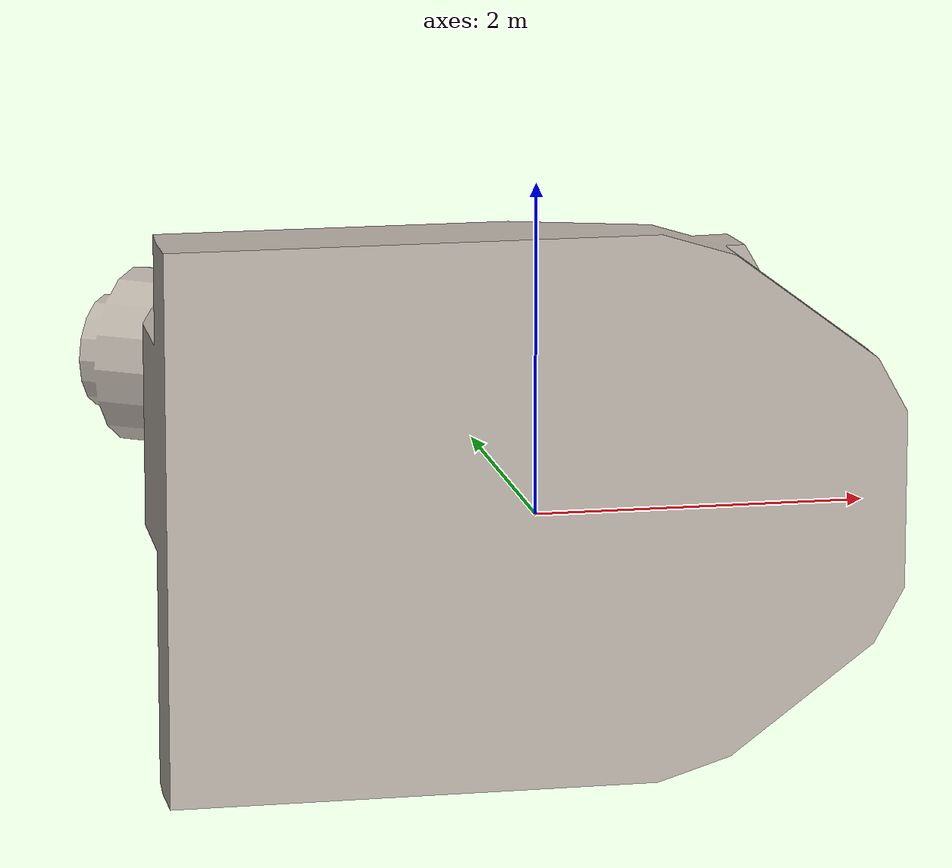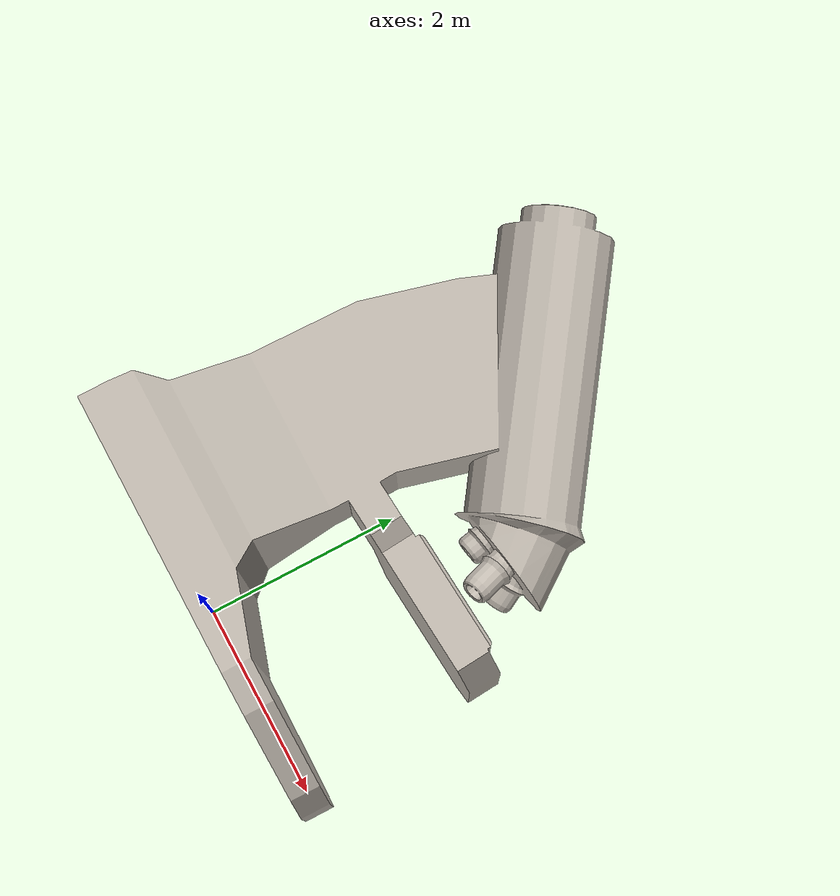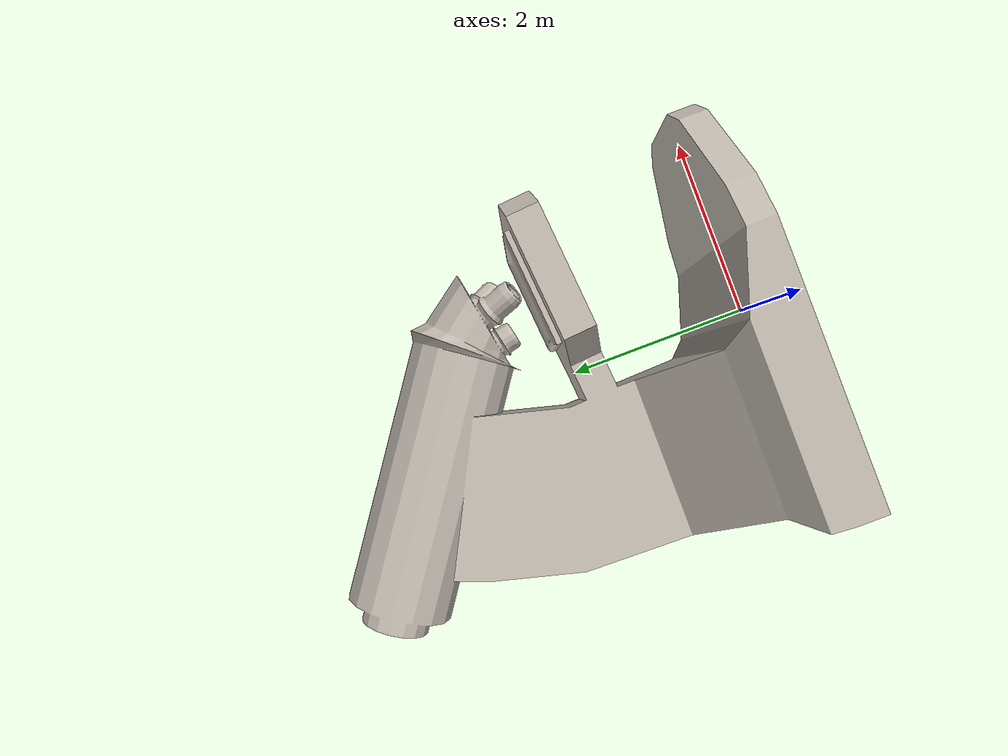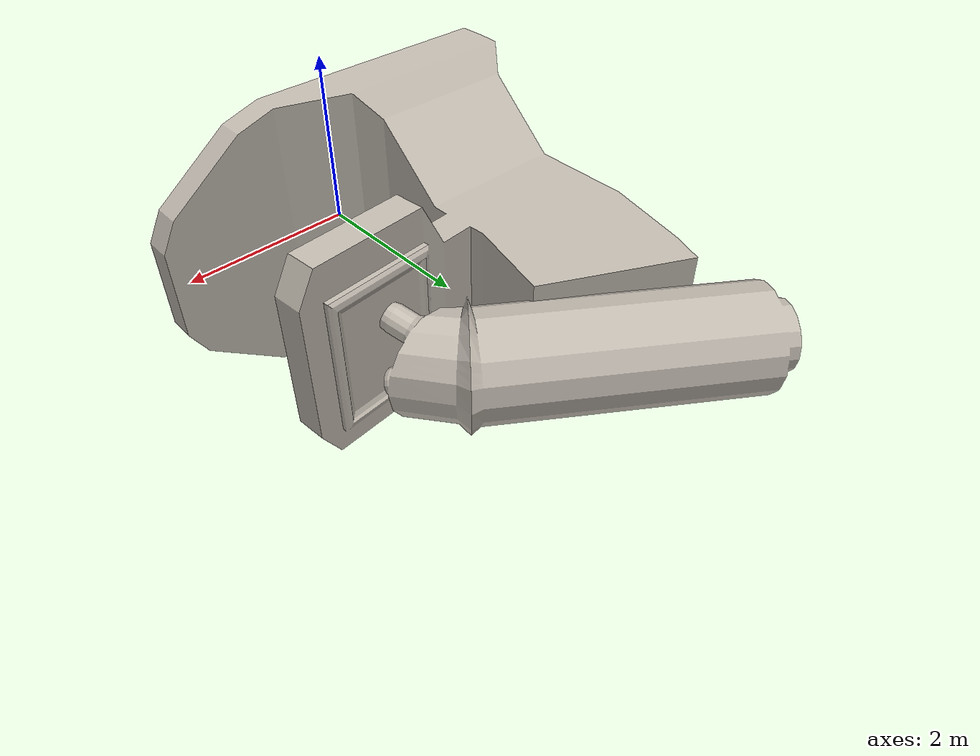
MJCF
<mujoco model="5a32697c3c7b4ee7ac0b6c400c4d7544">
  <default>
    <default class="visual">
      <geom group="2" type="mesh" contype="0" conaffinity="0"/>
    </default>
    <default class="collision">
      <geom group="3" type="mesh"/>
    </default>
  </default>
  <asset>
    <texture type="2d" name="material_0" file="material_0.png"/>
    <material name="material_0" texture="material_0" specular="0.4000000000000001" shininess="0.001"/>
    <mesh file="5a32697c3c7b4ee7ac0b6c400c4d7544/5a32697c3c7b4ee7ac0b6c400c4d7544.obj"/>
    <mesh file="5a32697c3c7b4ee7ac0b6c400c4d7544/5a32697c3c7b4ee7ac0b6c400c4d7544_collision_0.obj"/>
    <mesh file="5a32697c3c7b4ee7ac0b6c400c4d7544/5a32697c3c7b4ee7ac0b6c400c4d7544_collision_1.obj"/>
    <mesh file="5a32697c3c7b4ee7ac0b6c400c4d7544/5a32697c3c7b4ee7ac0b6c400c4d7544_collision_2.obj"/>
    <mesh file="5a32697c3c7b4ee7ac0b6c400c4d7544/5a32697c3c7b4ee7ac0b6c400c4d7544_collision_3.obj"/>
    <mesh file="5a32697c3c7b4ee7ac0b6c400c4d7544/5a32697c3c7b4ee7ac0b6c400c4d7544_collision_4.obj"/>
    <mesh file="5a32697c3c7b4ee7ac0b6c400c4d7544/5a32697c3c7b4ee7ac0b6c400c4d7544_collision_5.obj"/>
    <mesh file="5a32697c3c7b4ee7ac0b6c400c4d7544/5a32697c3c7b4ee7ac0b6c400c4d7544_collision_6.obj"/>
    <mesh file="5a32697c3c7b4ee7ac0b6c400c4d7544/5a32697c3c7b4ee7ac0b6c400c4d7544_collision_7.obj"/>
    <mesh file="5a32697c3c7b4ee7ac0b6c400c4d7544/5a32697c3c7b4ee7ac0b6c400c4d7544_collision_8.obj"/>
    <mesh file="5a32697c3c7b4ee7ac0b6c400c4d7544/5a32697c3c7b4ee7ac0b6c400c4d7544_collision_9.obj"/>
    <mesh file="5a32697c3c7b4ee7ac0b6c400c4d7544/5a32697c3c7b4ee7ac0b6c400c4d7544_collision_10.obj"/>
    <mesh file="5a32697c3c7b4ee7ac0b6c400c4d7544/5a32697c3c7b4ee7ac0b6c400c4d7544_collision_11.obj"/>
    <mesh file="5a32697c3c7b4ee7ac0b6c400c4d7544/5a32697c3c7b4ee7ac0b6c400c4d7544_collision_12.obj"/>
    <mesh file="5a32697c3c7b4ee7ac0b6c400c4d7544/5a32697c3c7b4ee7ac0b6c400c4d7544_collision_13.obj"/>
    <mesh file="5a32697c3c7b4ee7ac0b6c400c4d7544/5a32697c3c7b4ee7ac0b6c400c4d7544_collision_14.obj"/>
    <mesh file="5a32697c3c7b4ee7ac0b6c400c4d7544/5a32697c3c7b4ee7ac0b6c400c4d7544_collision_15.obj"/>
    <mesh file="5a32697c3c7b4ee7ac0b6c400c4d7544/5a32697c3c7b4ee7ac0b6c400c4d7544_collision_16.obj"/>
    <mesh file="5a32697c3c7b4ee7ac0b6c400c4d7544/5a32697c3c7b4ee7ac0b6c400c4d7544_collision_17.obj"/>
    <mesh file="5a32697c3c7b4ee7ac0b6c400c4d7544/5a32697c3c7b4ee7ac0b6c400c4d7544_collision_18.obj"/>
    <mesh file="5a32697c3c7b4ee7ac0b6c400c4d7544/5a32697c3c7b4ee7ac0b6c400c4d7544_collision_19.obj"/>
    <mesh file="5a32697c3c7b4ee7ac0b6c400c4d7544/5a32697c3c7b4ee7ac0b6c400c4d7544_collision_20.obj"/>
    <mesh file="5a32697c3c7b4ee7ac0b6c400c4d7544/5a32697c3c7b4ee7ac0b6c400c4d7544_collision_21.obj"/>
    <mesh file="5a32697c3c7b4ee7ac0b6c400c4d7544/5a32697c3c7b4ee7ac0b6c400c4d7544_collision_22.obj"/>
    <mesh file="5a32697c3c7b4ee7ac0b6c400c4d7544/5a32697c3c7b4ee7ac0b6c400c4d7544_collision_23.obj"/>
    <mesh file="5a32697c3c7b4ee7ac0b6c400c4d7544/5a32697c3c7b4ee7ac0b6c400c4d7544_collision_24.obj"/>
    <mesh file="5a32697c3c7b4ee7ac0b6c400c4d7544/5a32697c3c7b4ee7ac0b6c400c4d7544_collision_25.obj"/>
    <mesh file="5a32697c3c7b4ee7ac0b6c400c4d7544/5a32697c3c7b4ee7ac0b6c400c4d7544_collision_26.obj"/>
  </asset>
  <worldbody>
    <geom material="material_0" mesh="5a32697c3c7b4ee7ac0b6c400c4d7544" class="visual" mass="1"/>
    <geom mesh="5a32697c3c7b4ee7ac0b6c400c4d7544_collision_0" rgba="0.8595787308539634 0.06445734987900265 0.5424987839429043 1" class="collision" density="100"/>
    <geom mesh="5a32697c3c7b4ee7ac0b6c400c4d7544_collision_1" rgba="0.20353867221279687 0.4532482022425408 0.635094205136744 1" class="collision" density="100"/>
    <geom mesh="5a32697c3c7b4ee7ac0b6c400c4d7544_collision_2" rgba="0.21462754959643482 0.24233371140721605 0.6021407412321329 1" class="collision" density="100"/>
    <geom mesh="5a32697c3c7b4ee7ac0b6c400c4d7544_collision_3" rgba="0.23311174200945906 0.7242172495029436 0.951308982943281 1" class="collision" density="100"/>
    <geom mesh="5a32697c3c7b4ee7ac0b6c400c4d7544_collision_4" rgba="0.007191552676780288 0.08255574507599384 0.35008168850115806 1" class="collision" density="100"/>
    <geom mesh="5a32697c3c7b4ee7ac0b6c400c4d7544_collision_5" rgba="0.3616809266292037 0.9063921369841735 0.7787206285817728 1" class="collision" density="100"/>
    <geom mesh="5a32697c3c7b4ee7ac0b6c400c4d7544_collision_6" rgba="0.1742520252123677 0.18785536531681657 0.807770378657059 1" class="collision" density="100"/>
    <geom mesh="5a32697c3c7b4ee7ac0b6c400c4d7544_collision_7" rgba="0.4732992280789048 0.49568066867217997 0.1305609183459614 1" class="collision" density="100"/>
    <geom mesh="5a32697c3c7b4ee7ac0b6c400c4d7544_collision_8" rgba="0.7557665477530516 0.5038462710979964 0.9890070964789877 1" class="collision" density="100"/>
    <geom mesh="5a32697c3c7b4ee7ac0b6c400c4d7544_collision_9" rgba="0.1890934866619559 0.0801234490498427 0.3127430449645765 1" class="collision" density="100"/>
    <geom mesh="5a32697c3c7b4ee7ac0b6c400c4d7544_collision_10" rgba="0.006930700801862089 0.7697633651929728 0.7469906305188678 1" class="collision" density="100"/>
    <geom mesh="5a32697c3c7b4ee7ac0b6c400c4d7544_collision_11" rgba="0.0874825483695113 0.8556607223788761 0.12113921356801349 1" class="collision" density="100"/>
    <geom mesh="5a32697c3c7b4ee7ac0b6c400c4d7544_collision_12" rgba="0.09901084579945285 0.746252761854877 0.9944318313494539 1" class="collision" density="100"/>
    <geom mesh="5a32697c3c7b4ee7ac0b6c400c4d7544_collision_13" rgba="0.0649948783308677 0.9486579320986331 0.10770174583766079 1" class="collision" density="100"/>
    <geom mesh="5a32697c3c7b4ee7ac0b6c400c4d7544_collision_14" rgba="0.6970341035576229 0.43788488617349464 0.9266096005778396 1" class="collision" density="100"/>
    <geom mesh="5a32697c3c7b4ee7ac0b6c400c4d7544_collision_15" rgba="0.8958585902334348 0.04356198894532315 0.8591483560093519 1" class="collision" density="100"/>
    <geom mesh="5a32697c3c7b4ee7ac0b6c400c4d7544_collision_16" rgba="0.7708353755769379 0.09930244215793549 0.845186898182206 1" class="collision" density="100"/>
    <geom mesh="5a32697c3c7b4ee7ac0b6c400c4d7544_collision_17" rgba="0.0054475828543925076 0.34401854526652487 0.793004468325005 1" class="collision" density="100"/>
    <geom mesh="5a32697c3c7b4ee7ac0b6c400c4d7544_collision_18" rgba="0.8735615108751188 0.2983024837228695 0.6941707046193184 1" class="collision" density="100"/>
    <geom mesh="5a32697c3c7b4ee7ac0b6c400c4d7544_collision_19" rgba="0.5424638235221317 0.9195812848920433 0.020612600710885665 1" class="collision" density="100"/>
    <geom mesh="5a32697c3c7b4ee7ac0b6c400c4d7544_collision_20" rgba="0.5570579451091255 0.45094536701174215 0.25110881006345 1" class="collision" density="100"/>
    <geom mesh="5a32697c3c7b4ee7ac0b6c400c4d7544_collision_21" rgba="0.46332962616132045 0.42801023320391496 0.024659682065795385 1" class="collision" density="100"/>
    <geom mesh="5a32697c3c7b4ee7ac0b6c400c4d7544_collision_22" rgba="0.13558654392862868 0.038023852516002155 0.557407354889561 1" class="collision" density="100"/>
    <geom mesh="5a32697c3c7b4ee7ac0b6c400c4d7544_collision_23" rgba="0.6130165186203026 0.26058422537050197 0.7954673390627067 1" class="collision" density="100"/>
    <geom mesh="5a32697c3c7b4ee7ac0b6c400c4d7544_collision_24" rgba="0.668650616499876 0.47536323398953506 0.0402102558619446 1" class="collision" density="100"/>
    <geom mesh="5a32697c3c7b4ee7ac0b6c400c4d7544_collision_25" rgba="0.09607824557917011 0.13612975659030158 0.7892684703996434 1" class="collision" density="100"/>
    <geom mesh="5a32697c3c7b4ee7ac0b6c400c4d7544_collision_26" rgba="0.17735097691545032 0.04991235447587372 0.7816268066315155 1" class="collision" density="100"/>
  </worldbody>
</mujoco>
